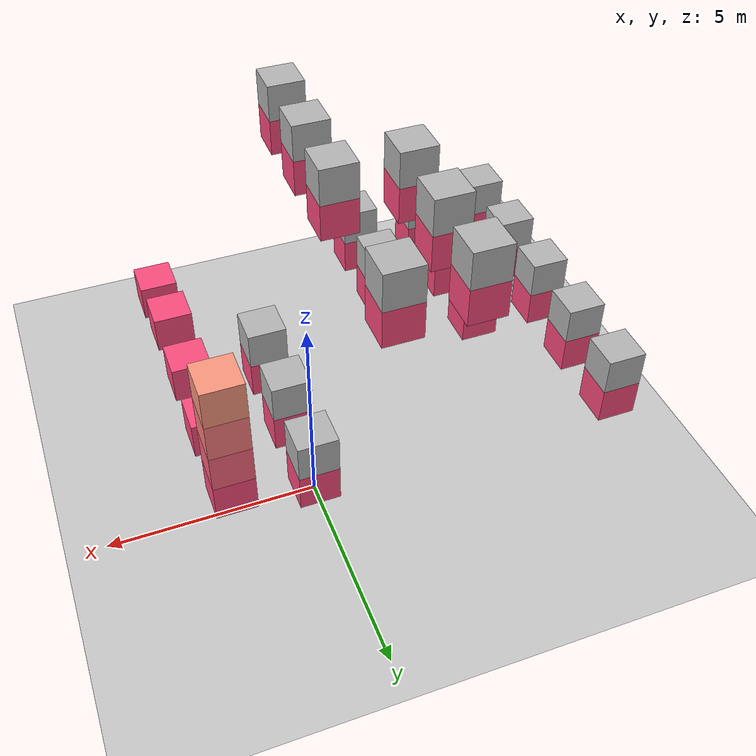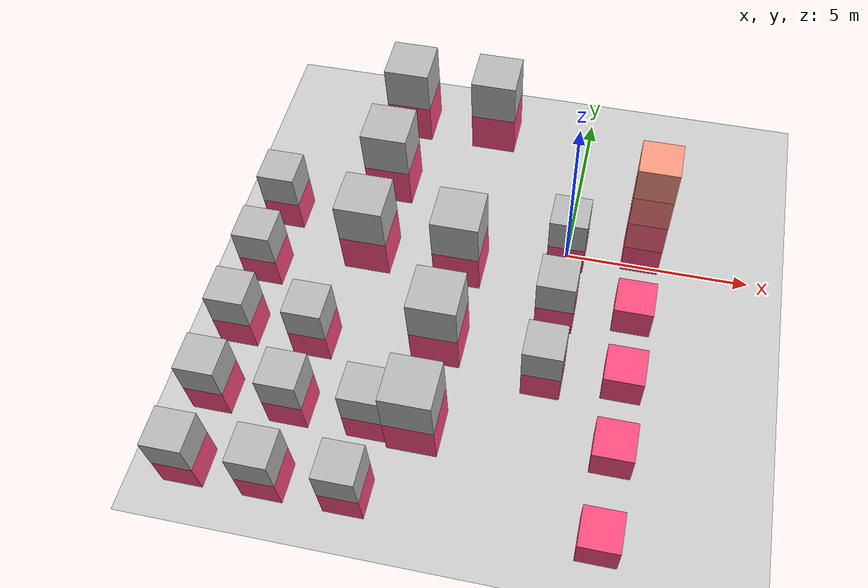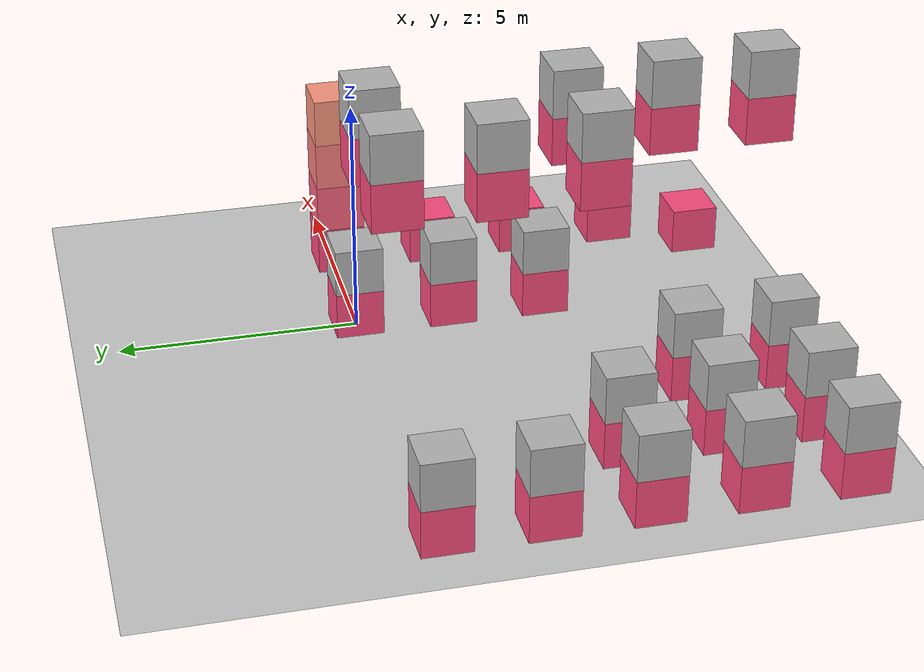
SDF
<sdf version="1.7">
 <world name="default">
  <include><uri>model://ground_plane</uri></include>
  <include><uri>model://sun</uri></include>
  <model name="model_test_apply_body_wrench">
   <pose>-8 -8 0.5 0 0 0</pose>
   <static>false</static>
   <link name="link_1">
    <inertial>
     <inertia><ixx>0.166</ixx><ixy>0</ixy><ixz>0</ixz><iyy>0.166</iyy><iyz>0</iyz><izz>0.166</izz></inertia>
     <mass>1.0</mass>
    </inertial>
    <collision name="collision"><geometry><box><size>1 1 1</size></box></geometry></collision>
    <visual name="visual">
     <geometry><box><size>1 1 1</size></box></geometry>
     <material><diffuse>1.0 0.3 0.5 1.0</diffuse><specular>.1 .1 .1 1.0</specular></material>
    </visual>
   </link>
   <link name="link_2">
    <pose>0 0 1 0 0 0</pose>
    <inertial>
     <inertia><ixx>0.166</ixx><ixy>0</ixy><ixz>0</ixz><iyy>0.166</iyy><iyz>0</iyz><izz>0.166</izz></inertia>
     <mass>1.0</mass>
    </inertial>
    <collision name="collision"><geometry><box><size>1 1 1</size></box></geometry></collision>
    <visual name="visual"><geometry><box><size>1 1 1</size></box></geometry></visual>
   </link>
   <joint name="joint" type="revolute">
    <parent>link_1</parent>
    <child>link_2</child>
    <axis><xyz>0 0 1</xyz></axis>
   </joint>
  </model>
  <model name="model_test_apply_body_force">
   <pose>-8 -6 0.5 0 0 0</pose>
   <static>false</static>
   <link name="link_1">
    <inertial>
     <inertia><ixx>0.166</ixx><ixy>0</ixy><ixz>0</ixz><iyy>0.166</iyy><iyz>0</iyz><izz>0.166</izz></inertia>
     <mass>1.0</mass>
    </inertial>
    <collision name="collision"><geometry><box><size>1 1 1</size></box></geometry></collision>
    <visual name="visual">
     <geometry><box><size>1 1 1</size></box></geometry>
     <material><diffuse>1.0 0.3 0.5 1.0</diffuse><specular>.1 .1 .1 1.0</specular></material>
    </visual>
   </link>
   <link name="link_2">
    <pose>0 0 1 0 0 0</pose>
    <inertial>
     <inertia><ixx>0.166</ixx><ixy>0</ixy><ixz>0</ixz><iyy>0.166</iyy><iyz>0</iyz><izz>0.166</izz></inertia>
     <mass>1.0</mass>
    </inertial>
    <collision name="collision"><geometry><box><size>1 1 1</size></box></geometry></collision>
    <visual name="visual"><geometry><box><size>1 1 1</size></box></geometry></visual>
   </link>
   <joint name="joint" type="revolute">
    <parent>link_1</parent>
    <child>link_2</child>
    <axis><xyz>0 0 1</xyz></axis>
   </joint>
  </model>
  <model name="model_test_apply_body_torque">
   <pose>-8 -4 0.5 0 0 0</pose>
   <static>false</static>
   <link name="link_1">
    <inertial>
     <inertia><ixx>0.166</ixx><ixy>0</ixy><ixz>0</ixz><iyy>0.166</iyy><iyz>0</iyz><izz>0.166</izz></inertia>
     <mass>1.0</mass>
    </inertial>
    <collision name="collision"><geometry><box><size>1 1 1</size></box></geometry></collision>
    <visual name="visual">
     <geometry><box><size>1 1 1</size></box></geometry>
     <material><diffuse>1.0 0.3 0.5 1.0</diffuse><specular>.1 .1 .1 1.0</specular></material>
    </visual>
   </link>
   <link name="link_2">
    <pose>0 0 1 0 0 0</pose>
    <inertial>
     <inertia><ixx>0.166</ixx><ixy>0</ixy><ixz>0</ixz><iyy>0.166</iyy><iyz>0</iyz><izz>0.166</izz></inertia>
     <mass>1.0</mass>
    </inertial>
    <collision name="collision"><geometry><box><size>1 1 1</size></box></geometry></collision>
    <visual name="visual"><geometry><box><size>1 1 1</size></box></geometry></visual>
   </link>
   <joint name="joint" type="revolute">
    <parent>link_1</parent>
    <child>link_2</child>
    <axis><xyz>0 0 1</xyz></axis>
   </joint>
  </model>
  <model name="model_test_apply_joint_effort">
   <pose>-8 -2 0.5 0 0 0</pose>
   <static>false</static>
   <link name="link_1">
    <inertial>
     <inertia><ixx>0.166</ixx><ixy>0</ixy><ixz>0</ixz><iyy>0.166</iyy><iyz>0</iyz><izz>0.166</izz></inertia>
     <mass>1.0</mass>
    </inertial>
    <collision name="collision"><geometry><box><size>1 1 1</size></box></geometry></collision>
    <visual name="visual">
     <geometry><box><size>1 1 1</size></box></geometry>
     <material><diffuse>1.0 0.3 0.5 1.0</diffuse><specular>.1 .1 .1 1.0</specular></material>
    </visual>
   </link>
   <link name="link_2">
    <pose>0 0 1 0 0 0</pose>
    <inertial>
     <inertia><ixx>0.166</ixx><ixy>0</ixy><ixz>0</ixz><iyy>0.166</iyy><iyz>0</iyz><izz>0.166</izz></inertia>
     <mass>1.0</mass>
    </inertial>
    <collision name="collision"><geometry><box><size>1 1 1</size></box></geometry></collision>
    <visual name="visual"><geometry><box><size>1 1 1</size></box></geometry></visual>
   </link>
   <joint name="joint" type="revolute">
    <parent>link_1</parent>
    <child>link_2</child>
    <axis><xyz>0 0 1</xyz></axis>
   </joint>
  </model>
  <model name="model_test_clear_body_wrenches">
   <pose>-8 0 0.5 0 0 0</pose>
   <static>false</static>
   <link name="link_1">
    <inertial>
     <inertia><ixx>0.166</ixx><ixy>0</ixy><ixz>0</ixz><iyy>0.166</iyy><iyz>0</iyz><izz>0.166</izz></inertia>
     <mass>1.0</mass>
    </inertial>
    <collision name="collision"><geometry><box><size>1 1 1</size></box></geometry></collision>
    <visual name="visual">
     <geometry><box><size>1 1 1</size></box></geometry>
     <material><diffuse>1.0 0.3 0.5 1.0</diffuse><specular>.1 .1 .1 1.0</specular></material>
    </visual>
   </link>
   <link name="link_2">
    <pose>0 0 1 0 0 0</pose>
    <inertial>
     <inertia><ixx>0.166</ixx><ixy>0</ixy><ixz>0</ixz><iyy>0.166</iyy><iyz>0</iyz><izz>0.166</izz></inertia>
     <mass>1.0</mass>
    </inertial>
    <collision name="collision"><geometry><box><size>1 1 1</size></box></geometry></collision>
    <visual name="visual"><geometry><box><size>1 1 1</size></box></geometry></visual>
   </link>
   <joint name="joint" type="revolute">
    <parent>link_1</parent>
    <child>link_2</child>
    <axis><xyz>0 0 1</xyz></axis>
   </joint>
  </model>
  <model name="model_test_get_joint_type">
   <pose>-6 -8 0.5 0 0 0</pose>
   <static>false</static>
   <link name="link_1">
    <inertial>
     <inertia><ixx>0.166</ixx><ixy>0</ixy><ixz>0</ixz><iyy>0.166</iyy><iyz>0</iyz><izz>0.166</izz></inertia>
     <mass>1.0</mass>
    </inertial>
    <collision name="collision"><geometry><box><size>1 1 1</size></box></geometry></collision>
    <visual name="visual">
     <geometry><box><size>1 1 1</size></box></geometry>
     <material><diffuse>1.0 0.3 0.5 1.0</diffuse><specular>.1 .1 .1 1.0</specular></material>
    </visual>
   </link>
   <link name="link_2">
    <pose>0 0 1 0 0 0</pose>
    <inertial>
     <inertia><ixx>0.166</ixx><ixy>0</ixy><ixz>0</ixz><iyy>0.166</iyy><iyz>0</iyz><izz>0.166</izz></inertia>
     <mass>1.0</mass>
    </inertial>
    <collision name="collision"><geometry><box><size>1 1 1</size></box></geometry></collision>
    <visual name="visual"><geometry><box><size>1 1 1</size></box></geometry></visual>
   </link>
   <joint name="joint" type="revolute">
    <parent>link_1</parent>
    <child>link_2</child>
    <axis><xyz>0 0 1</xyz></axis>
   </joint>
  </model>
  <model name="model_test_get_joint_position">
   <pose>-6 -6 0.5 0 0 0</pose>
   <static>false</static>
   <link name="link_1">
    <inertial>
     <inertia><ixx>0.166</ixx><ixy>0</ixy><ixz>0</ixz><iyy>0.166</iyy><iyz>0</iyz><izz>0.166</izz></inertia>
     <mass>1.0</mass>
    </inertial>
    <collision name="collision"><geometry><box><size>1 1 1</size></box></geometry></collision>
    <visual name="visual">
     <geometry><box><size>1 1 1</size></box></geometry>
     <material><diffuse>1.0 0.3 0.5 1.0</diffuse><specular>.1 .1 .1 1.0</specular></material>
    </visual>
   </link>
   <link name="link_2">
    <pose>0 0 1 0 0 0</pose>
    <inertial>
     <inertia><ixx>0.166</ixx><ixy>0</ixy><ixz>0</ixz><iyy>0.166</iyy><iyz>0</iyz><izz>0.166</izz></inertia>
     <mass>1.0</mass>
    </inertial>
    <collision name="collision"><geometry><box><size>1 1 1</size></box></geometry></collision>
    <visual name="visual"><geometry><box><size>1 1 1</size></box></geometry></visual>
   </link>
   <joint name="joint" type="revolute">
    <parent>link_1</parent>
    <child>link_2</child>
    <axis><xyz>0 0 1</xyz></axis>
   </joint>
  </model>
  <model name="model_test_get_joint_rate">
   <pose>-6 -4 0.5 0 0 0</pose>
   <static>false</static>
   <link name="link_1">
    <inertial>
     <inertia><ixx>0.166</ixx><ixy>0</ixy><ixz>0</ixz><iyy>0.166</iyy><iyz>0</iyz><izz>0.166</izz></inertia>
     <mass>1.0</mass>
    </inertial>
    <collision name="collision"><geometry><box><size>1 1 1</size></box></geometry></collision>
    <visual name="visual">
     <geometry><box><size>1 1 1</size></box></geometry>
     <material><diffuse>1.0 0.3 0.5 1.0</diffuse><specular>.1 .1 .1 1.0</specular></material>
    </visual>
   </link>
   <link name="link_2">
    <pose>0 0 1 0 0 0</pose>
    <inertial>
     <inertia><ixx>0.166</ixx><ixy>0</ixy><ixz>0</ixz><iyy>0.166</iyy><iyz>0</iyz><izz>0.166</izz></inertia>
     <mass>1.0</mass>
    </inertial>
    <collision name="collision"><geometry><box><size>1 1 1</size></box></geometry></collision>
    <visual name="visual"><geometry><box><size>1 1 1</size></box></geometry></visual>
   </link>
   <joint name="joint" type="revolute">
    <parent>link_1</parent>
    <child>link_2</child>
    <axis><xyz>0 0 1</xyz></axis>
   </joint>
  </model>
  <model name="model_test_get_link_moments">
   <pose>-4 -8 0.5 0 0 0</pose>
   <static>false</static>
   <link name="link_1">
    <inertial>
     <inertia><ixx>0.16</ixx><ixy>0.01</ixy><ixz>0.02</ixz><iyy>0.17</iyy><iyz>0.03</iyz><izz>0.18</izz></inertia>
     <mass>1.0</mass>
    </inertial>
    <collision name="collision"><geometry><box><size>1 1 1</size></box></geometry></collision>
    <visual name="visual">
     <geometry><box><size>1 1 1</size></box></geometry>
     <material><diffuse>1.0 0.3 0.5 1.0</diffuse><specular>.1 .1 .1 1.0</specular></material>
    </visual>
   </link>
   <link name="link_2">
    <pose>0 0 1 0 0 0</pose>
    <inertial>
     <inertia><ixx>0.166</ixx><ixy>0</ixy><ixz>0</ixz><iyy>0.166</iyy><iyz>0</iyz><izz>0.166</izz></inertia>
     <mass>1.0</mass>
    </inertial>
    <collision name="collision"><geometry><box><size>1 1 1</size></box></geometry></collision>
    <visual name="visual"><geometry><box><size>1 1 1</size></box></geometry></visual>
   </link>
   <joint name="joint" type="revolute">
    <parent>link_1</parent>
    <child>link_2</child>
    <axis><xyz>0 0 1</xyz></axis>
   </joint>
  </model>
  <model name="model_test_get_link_state">
   <pose>-4 -6 0.5 0 0 0</pose>
   <static>false</static>
   <link name="link_1">
    <inertial>
     <inertia><ixx>0.166</ixx><ixy>0</ixy><ixz>0</ixz><iyy>0.166</iyy><iyz>0</iyz><izz>0.166</izz></inertia>
     <mass>1.0</mass>
    </inertial>
    <collision name="collision"><geometry><box><size>1 1 1</size></box></geometry></collision>
    <visual name="visual">
     <geometry><box><size>1 1 1</size></box></geometry>
     <material><diffuse>1.0 0.3 0.5 1.0</diffuse><specular>.1 .1 .1 1.0</specular></material>
    </visual>
   </link>
   <link name="link_2">
    <pose>0 0 1 0 0 0</pose>
    <inertial>
     <inertia><ixx>0.11</ixx><ixy>0.03</ixy><ixz>0.8</ixz><iyy>0.241</iyy><iyz>0.001</iyz><izz>0.23</izz></inertia>
     <mass>1.0</mass>
    </inertial>
    <collision name="collision"><geometry><box><size>1 1 1</size></box></geometry></collision>
    <visual name="visual"><geometry><box><size>1 1 1</size></box></geometry></visual>
   </link>
   <joint name="joint" type="revolute">
    <parent>link_1</parent>
    <child>link_2</child>
    <axis><xyz>0 0 1</xyz></axis>
   </joint>
  </model>
  <model name="model_test_get_link_position">
   <pose>-4 -4 5 0 0 0</pose>
   <static>false</static>
   <link name="link_1">
    <inertial>
     <inertia><ixx>0.166</ixx><ixy>0</ixy><ixz>0</ixz><iyy>0.166</iyy><iyz>0</iyz><izz>0.166</izz></inertia>
     <mass>1.0</mass>
    </inertial>
    <collision name="collision"><geometry><box><size>1 1 1</size></box></geometry></collision>
    <visual name="visual">
     <geometry><box><size>1 1 1</size></box></geometry>
     <material><diffuse>1.0 0.3 0.5 1.0</diffuse><specular>.1 .1 .1 1.0</specular></material>
    </visual>
   </link>
   <link name="link_2">
    <pose>0 0 1 0 0 0</pose>
    <inertial>
     <inertia><ixx>0.11</ixx><ixy>0.03</ixy><ixz>0.8</ixz><iyy>0.241</iyy><iyz>0.001</iyz><izz>0.23</izz></inertia>
     <mass>1.0</mass>
    </inertial>
    <collision name="collision"><geometry><box><size>1 1 1</size></box></geometry></collision>
    <visual name="visual"><geometry><box><size>1 1 1</size></box></geometry></visual>
   </link>
   <joint name="joint" type="revolute">
    <parent>link_1</parent>
    <child>link_2</child>
    <axis><xyz>0 0 1</xyz></axis>
   </joint>
  </model>
  <model name="model_test_get_link_orientation">
   <pose>-4 -2 5 0 0 0</pose>
   <static>false</static>
   <link name="link_1">
    <inertial>
     <inertia><ixx>0.166</ixx><ixy>0</ixy><ixz>0</ixz><iyy>0.166</iyy><iyz>0</iyz><izz>0.166</izz></inertia>
     <mass>1.0</mass>
    </inertial>
    <collision name="collision"><geometry><box><size>1 1 1</size></box></geometry></collision>
    <visual name="visual">
     <geometry><box><size>1 1 1</size></box></geometry>
     <material><diffuse>1.0 0.3 0.5 1.0</diffuse><specular>.1 .1 .1 1.0</specular></material>
    </visual>
   </link>
   <link name="link_2">
    <pose>0 0 1 0 0 0</pose>
    <inertial>
     <inertia><ixx>0.11</ixx><ixy>0.03</ixy><ixz>0.8</ixz><iyy>0.241</iyy><iyz>0.001</iyz><izz>0.23</izz></inertia>
     <mass>1.0</mass>
    </inertial>
    <collision name="collision"><geometry><box><size>1 1 1</size></box></geometry></collision>
    <visual name="visual"><geometry><box><size>1 1 1</size></box></geometry></visual>
   </link>
   <joint name="joint" type="revolute">
    <parent>link_1</parent>
    <child>link_2</child>
    <axis><xyz>0 0 1</xyz></axis>
   </joint>
  </model>
  <model name="model_test_get_link_linear_velocity">
   <pose>-4 0 5 0 0 0</pose>
   <static>false</static>
   <link name="link_1">
    <inertial>
     <inertia><ixx>0.166</ixx><ixy>0</ixy><ixz>0</ixz><iyy>0.166</iyy><iyz>0</iyz><izz>0.166</izz></inertia>
     <mass>1.0</mass>
    </inertial>
    <collision name="collision"><geometry><box><size>1 1 1</size></box></geometry></collision>
    <visual name="visual">
     <geometry><box><size>1 1 1</size></box></geometry>
     <material><diffuse>1.0 0.3 0.5 1.0</diffuse><specular>.1 .1 .1 1.0</specular></material>
    </visual>
   </link>
   <link name="link_2">
    <pose>0 0 1 0 0 0</pose>
    <inertial>
     <inertia><ixx>0.11</ixx><ixy>0.03</ixy><ixz>0.8</ixz><iyy>0.241</iyy><iyz>0.001</iyz><izz>0.23</izz></inertia>
     <mass>1.0</mass>
    </inertial>
    <collision name="collision"><geometry><box><size>1 1 1</size></box></geometry></collision>
    <visual name="visual"><geometry><box><size>1 1 1</size></box></geometry></visual>
   </link>
   <joint name="joint" type="revolute">
    <parent>link_1</parent>
    <child>link_2</child>
    <axis><xyz>0 0 1</xyz></axis>
   </joint>
  </model>
  <model name="model_test_get_link_names">
   <pose>-2 -8 5 0 0 0</pose>
   <static>false</static>
   <link name="first_link">
    <inertial>
     <inertia><ixx>0.166</ixx><ixy>0</ixy><ixz>0</ixz><iyy>0.166</iyy><iyz>0</iyz><izz>0.166</izz></inertia>
     <mass>1.0</mass>
    </inertial>
    <collision name="collision"><geometry><box><size>1 1 1</size></box></geometry></collision>
    <visual name="visual">
     <geometry><box><size>1 1 1</size></box></geometry>
     <material><diffuse>1.0 0.3 0.5 1.0</diffuse><specular>.1 .1 .1 1.0</specular></material>
    </visual>
   </link>
   <link name="second_link">
    <pose>0 0 1 0 0 0</pose>
    <inertial>
     <inertia><ixx>0.166</ixx><ixy>0</ixy><ixz>0</ixz><iyy>0.166</iyy><iyz>0</iyz><izz>0.166</izz></inertia>
     <mass>1.0</mass>
    </inertial>
    <collision name="collision"><geometry><box><size>1 1 1</size></box></geometry></collision>
    <visual name="visual"><geometry><box><size>1 1 1</size></box></geometry></visual>
   </link>
   <joint name="joint" type="revolute">
    <parent>first_link</parent>
    <child>second_link</child>
    <axis><xyz>0 0 1</xyz></axis>
   </joint>
  </model>
  <model name="model_test_get_geom_name">
   <pose>-2 -6 5 0 0 0</pose>
   <static>false</static>
   <link name="link_1">
    <inertial>
     <inertia><ixx>0.166</ixx><ixy>0</ixy><ixz>0</ixz><iyy>0.166</iyy><iyz>0</iyz><izz>0.166</izz></inertia>
     <mass>1.0</mass>
    </inertial>
    <collision name="collision"><geometry><box><size>1 1 1</size></box></geometry></collision>
    <visual name="visual">
     <geometry><box><size>1 1 1</size></box></geometry>
     <material><diffuse>1.0 0.3 0.5 1.0</diffuse><specular>.1 .1 .1 1.0</specular></material>
    </visual>
   </link>
   <link name="link_2">
    <pose>0 0 1 0 0 0</pose>
    <inertial>
     <inertia><ixx>0.166</ixx><ixy>0</ixy><ixz>0</ixz><iyy>0.166</iyy><iyz>0</iyz><izz>0.166</izz></inertia>
     <mass>1.0</mass>
    </inertial>
    <collision name="link_2_collision"><geometry><box><size>1 1 1</size></box></geometry></collision>
    <visual name="visual"><geometry><box><size>1 1 1</size></box></geometry></visual>
   </link>
   <joint name="joint" type="revolute">
    <parent>link_1</parent>
    <child>link_2</child>
    <axis><xyz>0 0 1</xyz></axis>
   </joint>
  </model>
  <model name="model_test_get_joint_names">
   <pose>-2 -4 5 0 0 0</pose>
   <static>false</static>
   <link name="link_1">
    <inertial>
     <inertia><ixx>0.166</ixx><ixy>0</ixy><ixz>0</ixz><iyy>0.166</iyy><iyz>0</iyz><izz>0.166</izz></inertia>
     <mass>1.0</mass>
    </inertial>
    <collision name="collision"><geometry><box><size>1 1 1</size></box></geometry></collision>
    <visual name="visual">
     <geometry><box><size>1 1 1</size></box></geometry>
     <material><diffuse>1.0 0.3 0.5 1.0</diffuse><specular>.1 .1 .1 1.0</specular></material>
    </visual>
   </link>
   <link name="link_2">
    <pose>0 0 1 0 0 0</pose>
    <inertial>
     <inertia><ixx>0.166</ixx><ixy>0</ixy><ixz>0</ixz><iyy>0.166</iyy><iyz>0</iyz><izz>0.166</izz></inertia>
     <mass>1.0</mass>
    </inertial>
    <collision name="collision"><geometry><box><size>1 1 1</size></box></geometry></collision>
    <visual name="visual"><geometry><box><size>1 1 1</size></box></geometry></visual>
   </link>
   <joint name="first_joint" type="revolute">
    <parent>link_1</parent>
    <child>link_2</child>
    <axis><xyz>0 0 1</xyz></axis>
   </joint>
   <joint name="second_joint" type="revolute">
    <parent>link_1</parent>
    <child>link_2</child>
    <axis><xyz>0 0 1</xyz></axis>
   </joint>
  </model>
  <model name="model_test_is_model_static">
   <pose>-2 0 5 0 0 0</pose>
   <static>false</static>
   <link name="link_1">
    <inertial>
     <inertia><ixx>0.166</ixx><ixy>0</ixy><ixz>0</ixz><iyy>0.166</iyy><iyz>0</iyz><izz>0.166</izz></inertia>
     <mass>1.0</mass>
    </inertial>
    <collision name="collision"><geometry><box><size>1 1 1</size></box></geometry></collision>
    <visual name="visual">
     <geometry><box><size>1 1 1</size></box></geometry>
     <material><diffuse>1.0 0.3 0.5 1.0</diffuse><specular>.1 .1 .1 1.0</specular></material>
    </visual>
   </link>
   <link name="link_2">
    <pose>0 0 1 0 0 0</pose>
    <inertial>
     <inertia><ixx>0.166</ixx><ixy>0</ixy><ixz>0</ixz><iyy>0.166</iyy><iyz>0</iyz><izz>0.166</izz></inertia>
     <mass>1.0</mass>
    </inertial>
    <collision name="collision"><geometry><box><size>1 1 1</size></box></geometry></collision>
    <visual name="visual"><geometry><box><size>1 1 1</size></box></geometry></visual>
   </link>
   <joint name="joint" type="revolute">
    <parent>link_1</parent>
    <child>link_2</child>
    <axis><xyz>0 0 1</xyz></axis>
   </joint>
  </model>
  <model name="model_test_set_link_properties">
   <pose>0 -4 0.5 0 0 0</pose>
   <static>false</static>
   <link name="link_1">
    <inertial>
     <inertia><ixx>0.166</ixx><ixy>0</ixy><ixz>0</ixz><iyy>0.166</iyy><iyz>0</iyz><izz>0.166</izz></inertia>
     <mass>1.0</mass>
    </inertial>
    <collision name="collision"><geometry><box><size>1 1 1</size></box></geometry></collision>
    <visual name="visual">
     <geometry><box><size>1 1 1</size></box></geometry>
     <material><diffuse>1.0 0.3 0.5 1.0</diffuse><specular>.1 .1 .1 1.0</specular></material>
    </visual>
   </link>
   <link name="link_2">
    <pose>0 0 1 0 0 0</pose>
    <inertial>
     <inertia><ixx>0.166</ixx><ixy>0</ixy><ixz>0</ixz><iyy>0.166</iyy><iyz>0</iyz><izz>0.166</izz></inertia>
     <mass>1.0</mass>
    </inertial>
    <collision name="collision"><geometry><box><size>1 1 1</size></box></geometry></collision>
    <visual name="visual"><geometry><box><size>1 1 1</size></box></geometry></visual>
   </link>
   <joint name="joint" type="revolute">
    <parent>link_1</parent>
    <child>link_2</child>
    <axis><xyz>0 0 1</xyz></axis>
   </joint>
  </model>
  <model name="model_test_set_link_inertia_position">
   <pose>0 -2 0.5 0 0 0</pose>
   <static>false</static>
   <link name="link_1">
    <inertial>
     <inertia><ixx>0.166</ixx><ixy>0</ixy><ixz>0</ixz><iyy>0.166</iyy><iyz>0</iyz><izz>0.166</izz></inertia>
     <mass>1.0</mass>
    </inertial>
    <collision name="collision"><geometry><box><size>1 1 1</size></box></geometry></collision>
    <visual name="visual">
     <geometry><box><size>1 1 1</size></box></geometry>
     <material><diffuse>1.0 0.3 0.5 1.0</diffuse><specular>.1 .1 .1 1.0</specular></material>
    </visual>
   </link>
   <link name="link_2">
    <pose>0 0 1 0 0 0</pose>
    <inertial>
     <inertia><ixx>0.166</ixx><ixy>0</ixy><ixz>0</ixz><iyy>0.166</iyy><iyz>0</iyz><izz>0.166</izz></inertia>
     <mass>1.0</mass>
    </inertial>
    <collision name="collision"><geometry><box><size>1 1 1</size></box></geometry></collision>
    <visual name="visual"><geometry><box><size>1 1 1</size></box></geometry></visual>
   </link>
   <joint name="joint" type="revolute">
    <parent>link_1</parent>
    <child>link_2</child>
    <axis><xyz>0 0 1</xyz></axis>
   </joint>
  </model>
  <model name="model_test_set_link_inertia_orientation">
   <pose>0 0 0.5 0 0 0</pose>
   <static>false</static>
   <link name="link_1">
    <inertial>
     <inertia><ixx>0.166</ixx><ixy>0</ixy><ixz>0</ixz><iyy>0.166</iyy><iyz>0</iyz><izz>0.166</izz></inertia>
     <mass>1.0</mass>
    </inertial>
    <collision name="collision"><geometry><box><size>1 1 1</size></box></geometry></collision>
    <visual name="visual">
     <geometry><box><size>1 1 1</size></box></geometry>
     <material><diffuse>1.0 0.3 0.5 1.0</diffuse><specular>.1 .1 .1 1.0</specular></material>
    </visual>
   </link>
   <link name="link_2">
    <pose>0 0 1 0 0 0</pose>
    <inertial>
     <inertia><ixx>0.166</ixx><ixy>0</ixy><ixz>0</ixz><iyy>0.166</iyy><iyz>0</iyz><izz>0.166</izz></inertia>
     <mass>1.0</mass>
    </inertial>
    <collision name="collision"><geometry><box><size>1 1 1</size></box></geometry></collision>
    <visual name="visual"><geometry><box><size>1 1 1</size></box></geometry></visual>
   </link>
   <joint name="joint" type="revolute">
    <parent>link_1</parent>
    <child>link_2</child>
    <axis><xyz>0 0 1</xyz></axis>
   </joint>
  </model>
  <model name="model_test_set_link_position">
   <pose>2 -8 0.5 0 0 0</pose>
   <static>false</static>
   <link name="link_1">
    <gravity>false</gravity>
    <inertial>
     <inertia><ixx>0.166</ixx><ixy>0</ixy><ixz>0</ixz><iyy>0.166</iyy><iyz>0</iyz><izz>0.166</izz></inertia>
     <mass>1.0</mass>
    </inertial>
    <collision name="collision"><geometry><box><size>1 1 1</size></box></geometry></collision>
    <visual name="visual">
     <geometry><box><size>1 1 1</size></box></geometry>
     <material><diffuse>1.0 0.3 0.5 1.0</diffuse><specular>.1 .1 .1 1.0</specular></material>
    </visual>
   </link>
  </model>
  <model name="model_test_set_link_orientation">
   <pose>2 -6 1 0 0 0</pose>
   <static>false</static>
   <link name="link_1">
    <gravity>false</gravity>
    <inertial>
     <inertia><ixx>0.166</ixx><ixy>0</ixy><ixz>0</ixz><iyy>0.166</iyy><iyz>0</iyz><izz>0.166</izz></inertia>
     <mass>1.0</mass>
    </inertial>
    <collision name="collision"><geometry><box><size>1 1 1</size></box></geometry></collision>
    <visual name="visual">
     <geometry><box><size>1 1 1</size></box></geometry>
     <material><diffuse>1.0 0.3 0.5 1.0</diffuse><specular>.1 .1 .1 1.0</specular></material>
    </visual>
   </link>
  </model>
  <model name="model_test_set_link_linear_velocity">
   <pose>2 -4 1 0 0 0</pose>
   <static>false</static>
   <link name="link_1">
    <gravity>false</gravity>
    <inertial>
     <inertia><ixx>0.166</ixx><ixy>0</ixy><ixz>0</ixz><iyy>0.166</iyy><iyz>0</iyz><izz>0.166</izz></inertia>
     <mass>1.0</mass>
    </inertial>
    <collision name="collision"><geometry><box><size>1 1 1</size></box></geometry></collision>
    <visual name="visual">
     <geometry><box><size>1 1 1</size></box></geometry>
     <material><diffuse>1.0 0.3 0.5 1.0</diffuse><specular>.1 .1 .1 1.0</specular></material>
    </visual>
   </link>
  </model>
  <model name="model_test_set_link_angular_velocity">
   <pose>2 -2 1 0 0 0</pose>
   <static>false</static>
   <link name="link_1">
    <gravity>false</gravity>
    <inertial>
     <inertia><ixx>0.166</ixx><ixy>0</ixy><ixz>0</ixz><iyy>0.166</iyy><iyz>0</iyz><izz>0.166</izz></inertia>
     <mass>1.0</mass>
    </inertial>
    <collision name="collision"><geometry><box><size>1 1 1</size></box></geometry></collision>
    <visual name="visual">
     <geometry><box><size>1 1 1</size></box></geometry>
     <material><diffuse>1.0 0.3 0.5 1.0</diffuse><specular>.1 .1 .1 1.0</specular></material>
    </visual>
   </link>
  </model>
  <model name="model_test_set_joint_positions">
   <pose>2 0 1 0 0 0</pose>
   <static>false</static>
   <link name="link_1">
    <inertial>
     <inertia><ixx>0.166</ixx><ixy>0</ixy><ixz>0</ixz><iyy>0.166</iyy><iyz>0</iyz><izz>0.166</izz></inertia>
     <mass>1.0</mass>
    </inertial>
    <collision name="collision"><geometry><box><size>1 1 1</size></box></geometry></collision>
    <visual name="visual">
     <geometry><box><size>1 1 1</size></box></geometry>
     <material><diffuse>1.0 0.3 0.5 1.0</diffuse><specular>.1 .1 .1 1.0</specular></material>
    </visual>
   </link>
   <link name="link_2">
    <pose>0 0 1 0 0 0</pose>
    <inertial>
     <inertia><ixx>0.166</ixx><ixy>0</ixy><ixz>0</ixz><iyy>0.166</iyy><iyz>0</iyz><izz>0.166</izz></inertia>
     <mass>1.0</mass>
    </inertial>
    <collision name="collision"><geometry><box><size>1 1 1</size></box></geometry></collision>
    <visual name="visual">
     <geometry><box><size>1 1 1</size></box></geometry>
     <material><diffuse>1.0 0.4 0.5 1.0</diffuse><specular>.1 .1 .1 1.0</specular></material>
    </visual>
   </link>
   <link name="link_3">
    <pose>0 0 2 0 0 0</pose>
    <inertial>
     <inertia><ixx>0.166</ixx><ixy>0</ixy><ixz>0</ixz><iyy>0.166</iyy><iyz>0</iyz><izz>0.166</izz></inertia>
     <mass>1.0</mass>
    </inertial>
    <collision name="collision"><geometry><box><size>1 1 1</size></box></geometry></collision>
    <visual name="visual">
     <geometry><box><size>1 1 1</size></box></geometry>
     <material><diffuse>1.0 0.5 0.5 1.0</diffuse><specular>.1 .1 .1 1.0</specular></material>
    </visual>
   </link>
   <link name="link_4">
    <pose>0 0 3 0 0 0</pose>
    <inertial>
     <inertia><ixx>0.166</ixx><ixy>0</ixy><ixz>0</ixz><iyy>0.166</iyy><iyz>0</iyz><izz>0.166</izz></inertia>
     <mass>1.0</mass>
    </inertial>
    <collision name="collision"><geometry><box><size>1 1 1</size></box></geometry></collision>
    <visual name="visual">
     <geometry><box><size>1 1 1</size></box></geometry>
     <material><diffuse>1.0 0.6 0.5 1.0</diffuse><specular>.1 .1 .1 1.0</specular></material>
    </visual>
   </link>
   <joint name="joint_1" type="revolute">
    <parent>link_1</parent>
    <child>link_2</child>
    <pose>0 0 0.5 0 0 0</pose>
    <axis><xyz>0 0 1</xyz></axis>
   </joint>
   <joint name="joint_2" type="revolute">
    <parent>link_2</parent>
    <child>link_3</child>
    <pose>0 0 1.5 0 0 0</pose>
    <axis><xyz>0 0 1</xyz></axis>
   </joint>
   <joint name="joint_3" type="prismatic">
    <parent>link_3</parent>
    <child>link_4</child>
    <pose>0 0 2.5 0 0 0</pose>
    <axis><xyz>0 0 1</xyz><limit><lower>0</lower><upper>10</upper></limit></axis>
   </joint>
  </model>
 </world>
</sdf>
